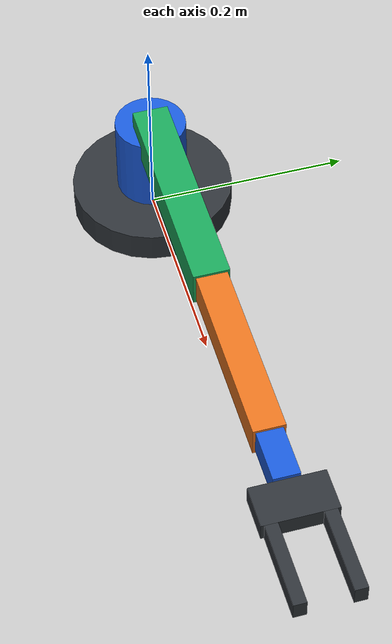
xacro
<?xml version="1.0"?>
<robot xmlns:xacro="http://www.ros.org/wiki/xacro" name="armpy_simple_arm">
  <xacro:property name="upper_len" value="0.22"/>
  <xacro:property name="forearm_len" value="0.18"/>
  <xacro:property name="finger_len" value="0.08"/>

  <material name="dark_gray">
    <color rgba="0.18 0.20 0.22 1.0"/>
  </material>
  <material name="blue">
    <color rgba="0.10 0.35 0.85 1.0"/>
  </material>
  <material name="green">
    <color rgba="0.10 0.65 0.35 1.0"/>
  </material>
  <material name="orange">
    <color rgba="0.90 0.45 0.12 1.0"/>
  </material>

  <link name="base_link">
    <visual>
      <origin xyz="0 0 0.015" rpy="0 0 0"/>
      <geometry>
        <cylinder radius="0.08" length="0.03"/>
      </geometry>
      <material name="dark_gray"/>
    </visual>
  </link>

  <joint name="base_yaw_joint" type="revolute">
    <parent link="base_link"/>
    <child link="base_column"/>
    <origin xyz="0 0 0.03" rpy="0 0 0"/>
    <axis xyz="0 0 1"/>
    <limit lower="-3.14" upper="3.14" effort="5" velocity="2"/>
  </joint>

  <link name="base_column">
    <visual>
      <origin xyz="0 0 0.04" rpy="0 0 0"/>
      <geometry>
        <cylinder radius="0.035" length="0.08"/>
      </geometry>
      <material name="blue"/>
    </visual>
  </link>

  <joint name="shoulder_joint" type="revolute">
    <parent link="base_column"/>
    <child link="upper_arm"/>
    <origin xyz="0 0 0.08" rpy="0 0 0"/>
    <axis xyz="0 1 0"/>
    <limit lower="-1.8" upper="1.8" effort="5" velocity="2"/>
  </joint>

  <link name="upper_arm">
    <visual>
      <origin xyz="${upper_len / 2} 0 0" rpy="0 0 0"/>
      <geometry>
        <box size="${upper_len} 0.035 0.035"/>
      </geometry>
      <material name="green"/>
    </visual>
  </link>

  <joint name="elbow_joint" type="revolute">
    <parent link="upper_arm"/>
    <child link="forearm"/>
    <origin xyz="${upper_len} 0 0" rpy="0 0 0"/>
    <axis xyz="0 1 0"/>
    <limit lower="0.0" upper="2.7" effort="5" velocity="2"/>
  </joint>

  <link name="forearm">
    <visual>
      <origin xyz="${forearm_len / 2} 0 0" rpy="0 0 0"/>
      <geometry>
        <box size="${forearm_len} 0.03 0.03"/>
      </geometry>
      <material name="orange"/>
    </visual>
  </link>

  <joint name="wrist_joint" type="revolute">
    <parent link="forearm"/>
    <child link="wrist_link"/>
    <origin xyz="${forearm_len} 0 0" rpy="0 0 0"/>
    <axis xyz="0 1 0"/>
    <limit lower="-2.7" upper="2.7" effort="3" velocity="2"/>
  </joint>

  <link name="wrist_link">
    <visual>
      <origin xyz="0.025 0 0" rpy="0 0 0"/>
      <geometry>
        <box size="0.05 0.025 0.025"/>
      </geometry>
      <material name="blue"/>
    </visual>
  </link>

  <joint name="gripper_mount_joint" type="fixed">
    <parent link="wrist_link"/>
    <child link="gripper_palm"/>
    <origin xyz="0.05 0 0" rpy="0 0 0"/>
  </joint>

  <link name="gripper_palm">
    <visual>
      <origin xyz="0.02 0 0" rpy="0 0 0"/>
      <geometry>
        <box size="0.04 0.07 0.018"/>
      </geometry>
      <material name="dark_gray"/>
    </visual>
  </link>

  <joint name="left_finger_joint" type="prismatic">
    <parent link="gripper_palm"/>
    <child link="left_finger"/>
    <origin xyz="0.04 0.026 0" rpy="0 0 0"/>
    <axis xyz="0 1 0"/>
    <limit lower="0.0" upper="0.025" effort="1" velocity="0.1"/>
  </joint>

  <link name="left_finger">
    <visual>
      <origin xyz="${finger_len / 2} 0 0" rpy="0 0 0"/>
      <geometry>
        <box size="${finger_len} 0.012 0.018"/>
      </geometry>
      <material name="dark_gray"/>
    </visual>
  </link>

  <joint name="right_finger_joint" type="prismatic">
    <parent link="gripper_palm"/>
    <child link="right_finger"/>
    <origin xyz="0.04 -0.026 0" rpy="0 0 0"/>
    <axis xyz="0 -1 0"/>
    <limit lower="0.0" upper="0.025" effort="1" velocity="0.1"/>
  </joint>

  <link name="right_finger">
    <visual>
      <origin xyz="${finger_len / 2} 0 0" rpy="0 0 0"/>
      <geometry>
        <box size="${finger_len} 0.012 0.018"/>
      </geometry>
      <material name="dark_gray"/>
    </visual>
  </link>
</robot>
